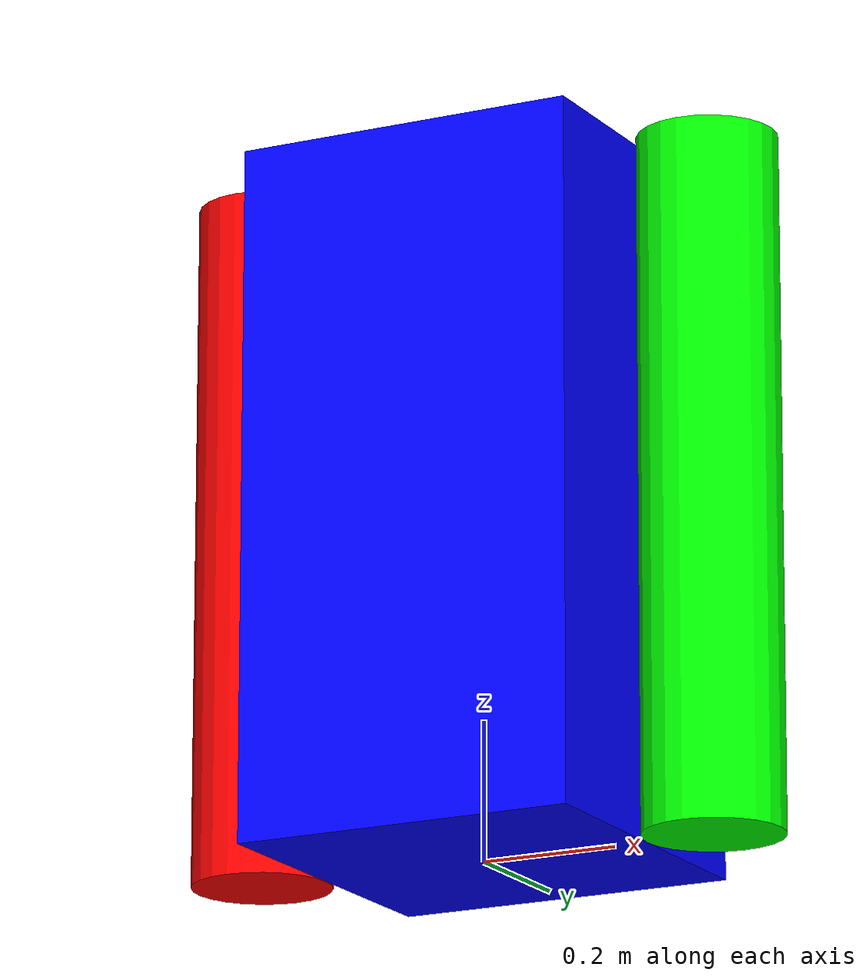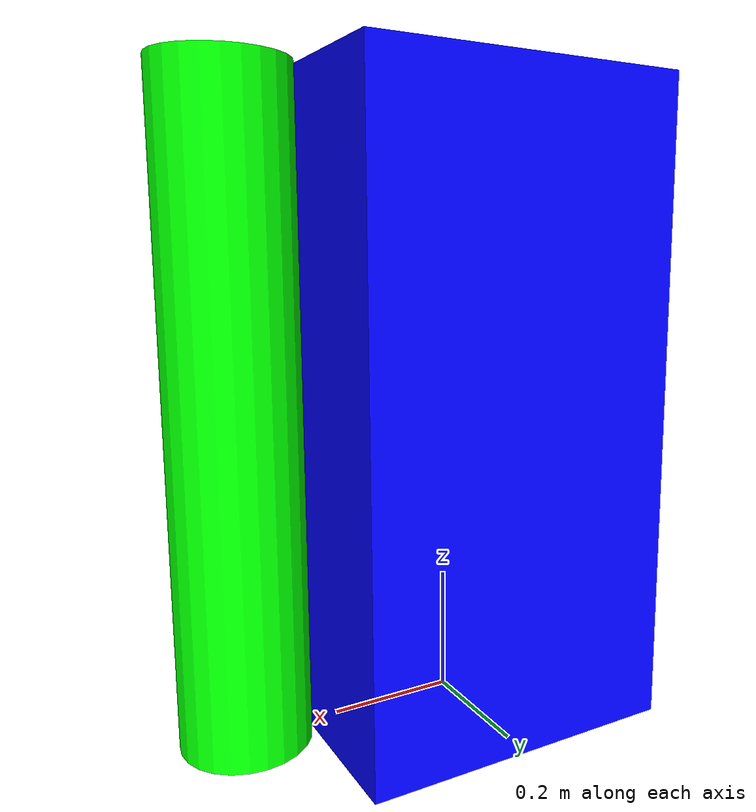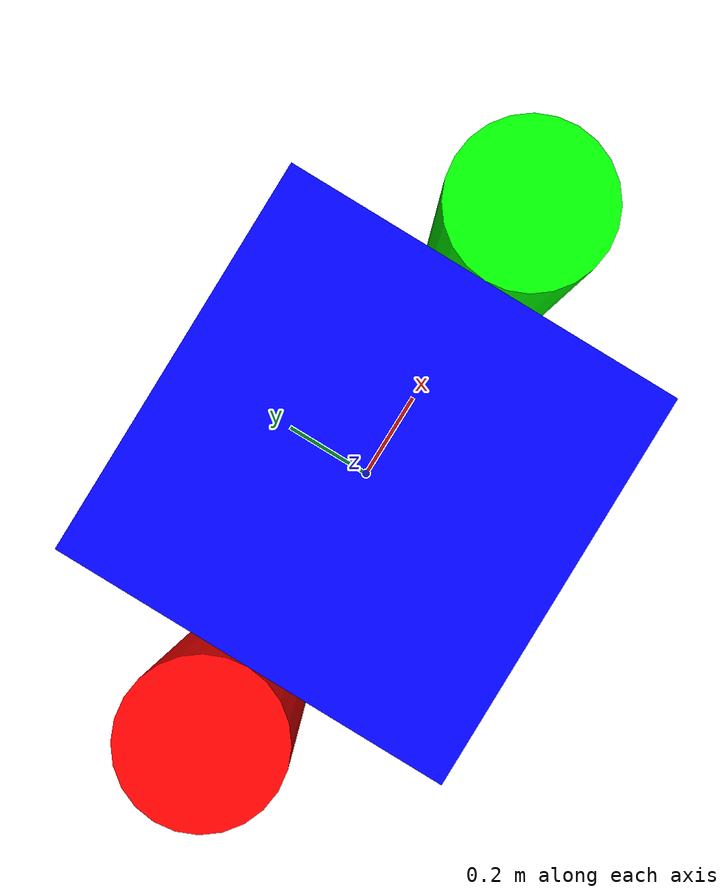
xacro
<?xml version="1.0"?>
<robot xmlns:xacro="http://www.ros.org/wiki/xacro" name="simple_two_armed_robot">

  <!-- Define a 'world' link as an anchor point (invisible and non-collidable) -->
  <link name="world"/>

  <!-- Connect 'world' link to 'base_link' with a fixed joint to position the robot above ground -->
  <joint name="world_to_base" type="fixed">
    <parent link="world"/>
    <child link="base_link"/>
    <!-- Adjust Z in the origin to set the height above ground -->
    <origin xyz="0 0 0.5" rpy="0 0 0"/>
  </joint>

  <!-- Macro for Inertial Properties -->
  <xacro:macro name="default_inertial" params="mass ixx iyy izz">
    <inertial>
      <origin xyz="0 0 0" rpy="0 0 0"/>
      <mass value="${mass}"/>
      <inertia ixx="${ixx}" ixy="0" ixz="0" iyy="${iyy}" iyz="0" izz="${izz}"/>
    </inertial>
  </xacro:macro>

  <!-- Updated Macro Definitions -->
  <xacro:macro name="cylinder_link" params="name length radius origin color mass ixx iyy izz">
    <link name="${name}">
      <xacro:default_inertial mass="${mass}" ixx="${ixx}" iyy="${iyy}" izz="${izz}"/>
      <visual>
        <geometry>
          <cylinder length="${length}" radius="${radius}"/>
        </geometry>
        <origin xyz="${origin}" rpy="0 0 0"/>
        <material name="${color}"/>
      </visual>
    </link>
  </xacro:macro>

  <xacro:macro name="revolute_joint" params="name parent child origin axis lower_limit upper_limit">
    <joint name="${name}" type="revolute">
      <parent link="${parent}"/>
      <child link="${child}"/>
      <origin xyz="${origin}" rpy="0 0 0"/>
      <axis xyz="${axis}"/>
      <limit lower="${lower_limit}" upper="${upper_limit}" effort="100" velocity="0.5"/>
    </joint>
  </xacro:macro>

  <!-- Material Definitions -->
  <material name="blue">
    <color rgba="0 0 1 1"/>
  </material>
  <material name="green">
    <color rgba="0 1 0 1"/>
  </material>
  <material name="red">
    <color rgba="1 0 0 1"/>
  </material>

  <!-- base_link (Torso) Link -->
  <link name="base_link">
    <xacro:default_inertial mass="10.0" ixx="0.1" iyy="0.1" izz="0.2"/>
    <visual>
      <geometry>
        <box size="0.5 0.5 1"/>
      </geometry>
      <material name="blue"/>
    </visual>
  </link>

  <!-- Left and Right Arm Links with Inertial Properties -->
  <xacro:cylinder_link name="left_arm" length="1" radius="0.1" origin="0.1 0 -0.5" color="green" mass="1.0" ixx="0.01" iyy="0.01" izz="0.02"/>
  <xacro:cylinder_link name="right_arm" length="1" radius="0.1" origin="-0.1 0 -0.5" color="red" mass="1.0" ixx="0.01" iyy="0.01" izz="0.02"/>

  <!-- Left and Right Shoulder Joints -->
  <xacro:revolute_joint name="left_shoulder" parent="base_link" child="left_arm" origin="0.25 0 0.5" axis="0 1 0" lower_limit="-1.5" upper_limit="1.5"/>
  <xacro:revolute_joint name="right_shoulder" parent="base_link" child="right_arm" origin="-0.25 0 0.5" axis="0 1 0" lower_limit="-1.5" upper_limit="1.5"/>

</robot>
